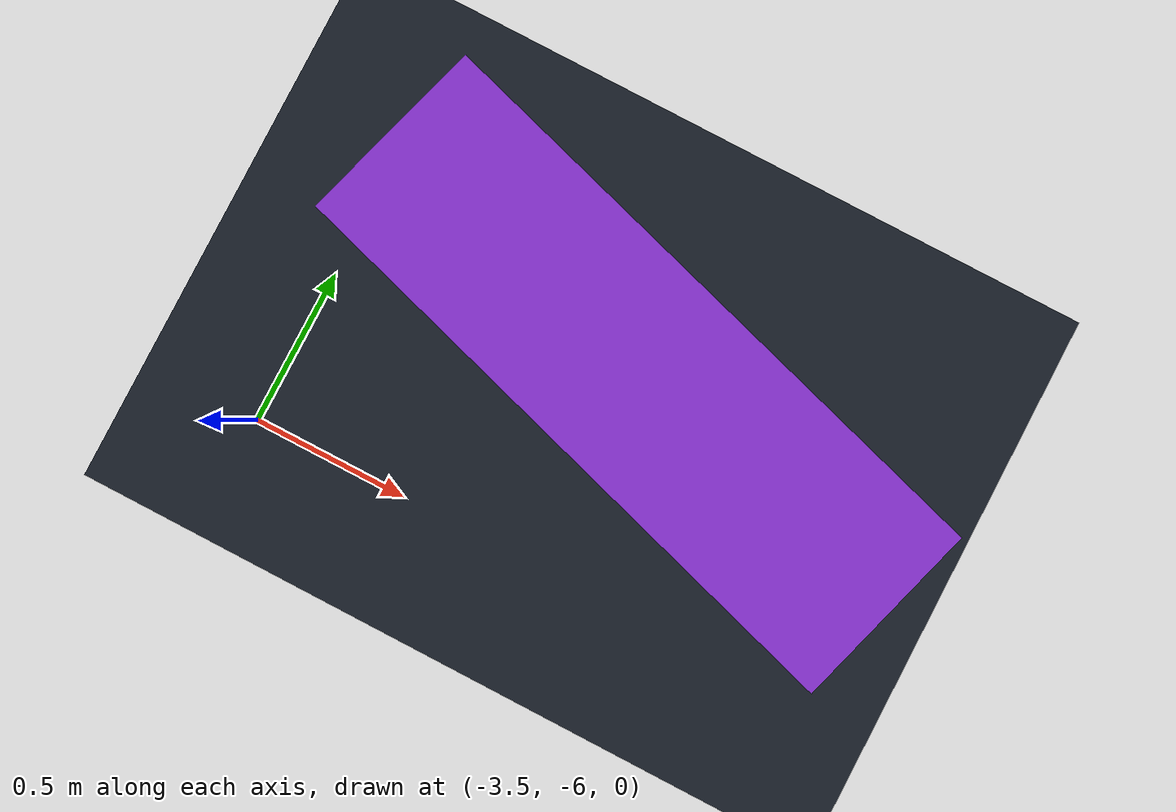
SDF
<sdf version="1.9">
 <world name="loop_course">
  <model name="ground">
   <static>true</static>
   <link name="ground">
    <collision name="ground_collision">
     <pose>0 0 -0.05 0 0 0</pose>
     <geometry><box><size>30 30 0.1</size></box></geometry>
    </collision>
    <visual name="ground_visual">
     <pose>0 0 -0.05 0 0 0</pose>
     <geometry><box><size>30 30 0.1</size></box></geometry>
     <material><ambient>0.105 0.13 0.17 1</ambient><diffuse>0.105 0.13 0.17 1</diffuse></material>
    </visual>
   </link>
  </model>
  <model name="overview_camera">
   <static>true</static>
   <link name="camera_link">
    <pose>9 -12 15 0 0.7854 2.2143</pose>
    <sensor name="overview" type="camera">
     <topic>/loop/overview</topic>
     <update_rate>1</update_rate>
     <always_on>true</always_on>
     <camera>
      <horizontal_fov>1.05</horizontal_fov>
      <image><width>1280</width><height>900</height><format>R8G8B8</format></image>
      <clip><near>0.1</near><far>60</far></clip>
     </camera>
    </sensor>
   </link>
  </model>
  <model name="obstacle_localization_2">
   <static>true</static>
   <pose>-2.57905344822516 -5.399928635400044 .5 0 0 -0.2944872463840332</pose>
   <link name="landmark">
    <collision name="marker"><geometry><box><size>1.45 0.45 1</size></box></geometry></collision>
    <visual name="marker_visual">
     <geometry><box><size>1.45 0.45 1</size></box></geometry>
     <material><ambient>.55 .2 .85 1</ambient><diffuse>.55 .2 .85 1</diffuse></material>
    </visual>
   </link>
  </model>
 </world>
</sdf>
